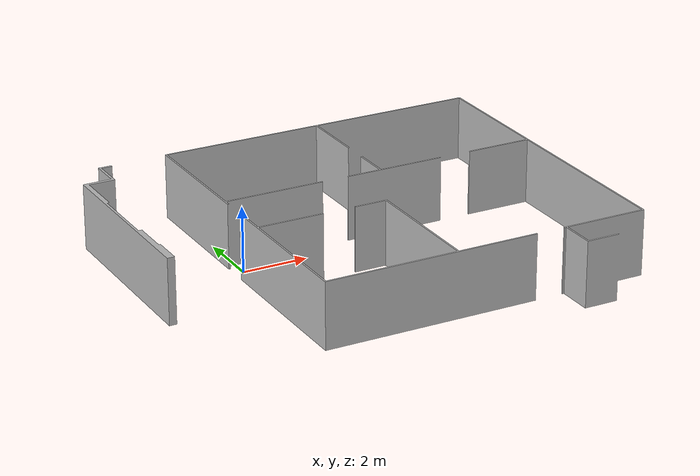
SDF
<?xml version="1.0" ?>
<sdf version="1.6">
  <model name="tue.library/desks.support">
    <link name="1">
      <collision name="1">
        <geometry>
          <mesh>
            <uri>model://tue.library/desks.support/shape/heightmap.stl</uri>
          </mesh>
        </geometry>
        <name>1</name>
      </collision>
      <visual name="1">
        <geometry>
          <mesh>
            <uri>model://tue.library/desks.support/shape/heightmap.stl</uri>
          </mesh>
        </geometry>
        <name>1</name>
      </visual>
      <pose>0 0 0 0 0 0</pose>
      <name>1</name>
    </link>
    <static>true</static>
    <name>tue.library/desks.support</name>
  </model>
</sdf>
